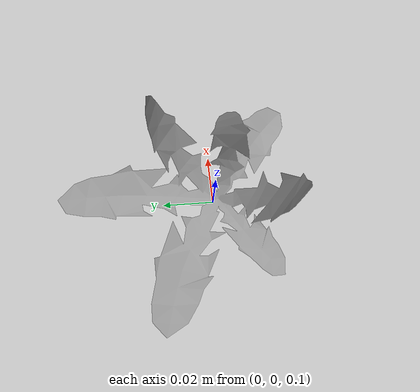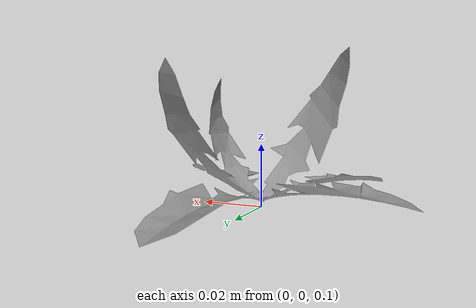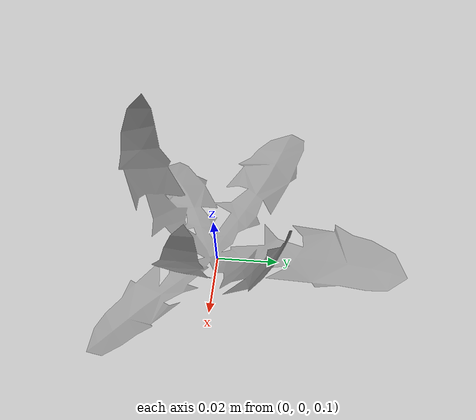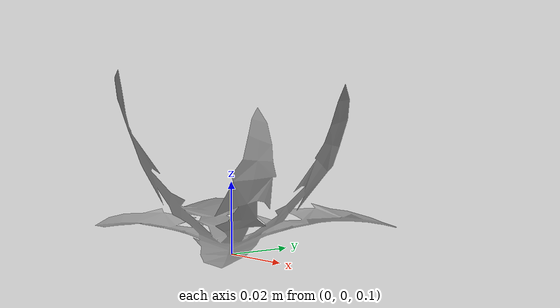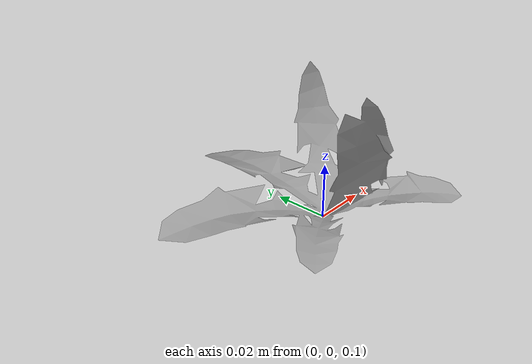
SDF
<?xml version='1.0'?>
<sdf version='1.6'>
  <model name='small_plant'>
    <link name='link_1'>
      <pose frame=''>0 0 0.112 0 -0 0</pose>
      <inertial>
        <mass>1e-05</mass>
        <inertia>
          <ixx>0.166667</ixx>
          <ixy>0</ixy>
          <ixz>0</ixz>
          <iyy>0.166667</iyy>
          <iyz>0</iyz>
          <izz>0.166667</izz>
        </inertia>
        <pose frame=''>0 0 0 0 -0 0</pose>
      </inertial>
      <gravity>1</gravity>
      <self_collide>0</self_collide>
      <kinematic>0</kinematic>
      <visual name='visual'>
        <pose frame=''>0 0 0 0 -0 0</pose>
        <geometry>
          <mesh>
            <uri>model://small_plant/mesh/small_plant.stl</uri>
            <scale>1 1 1</scale>
          </mesh>
        </geometry>
        <material>
          <lighting>1</lighting>
          <script>
            <uri>file://media/materials/scripts/gazebo.material</uri>
            <name>Gazebo/Grey</name>
          </script>
          <ambient>0.3 0.3 0.3 1</ambient>
          <diffuse>0.7 0.7 0.7 1</diffuse>
          <specular>0.01 1 0.01 1</specular>
          <emissive>0 1 0 1</emissive>
          <shader type='vertex'>
            <normal_map>__default__</normal_map>
          </shader>
        </material>
        <cast_shadows>1</cast_shadows>
        <transparency>0</transparency>
      </visual>
    </link>
    <static>1</static>
    <allow_auto_disable>1</allow_auto_disable>
  </model>
</sdf>
